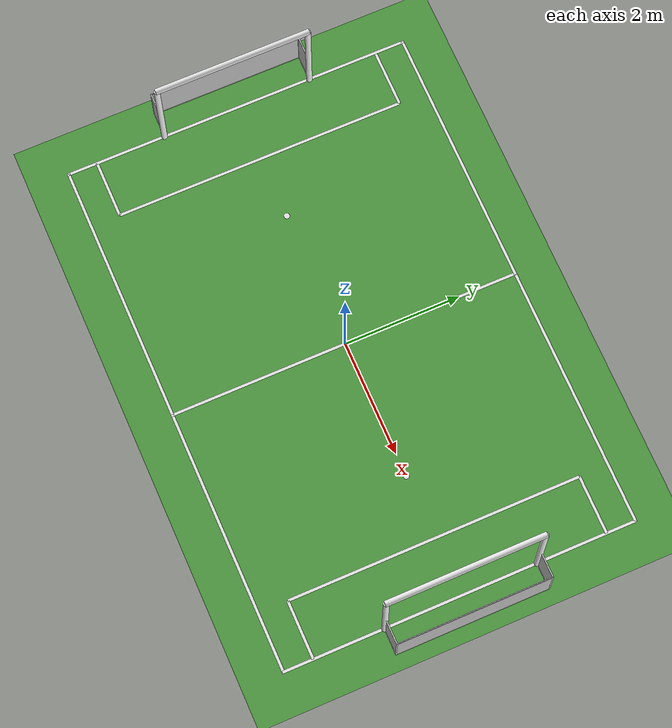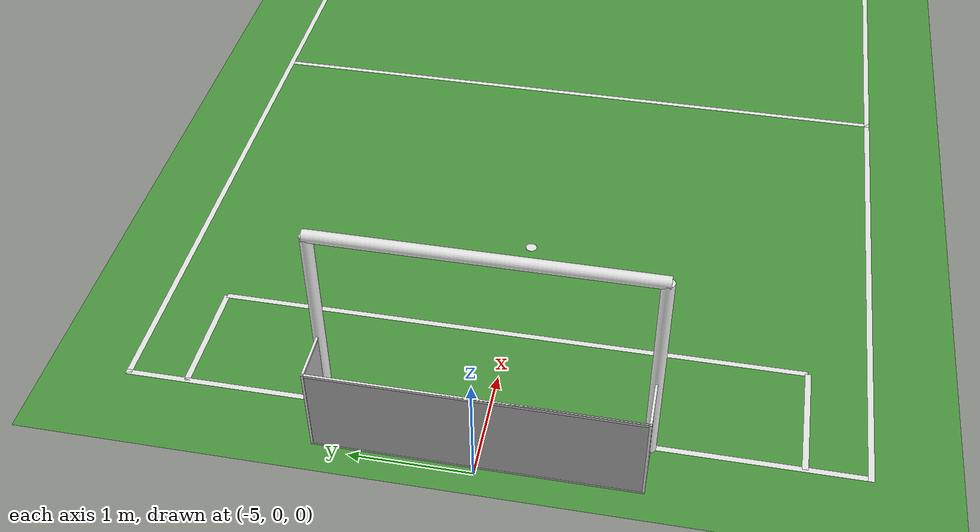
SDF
<sdf version="1.6">
 <world name="default">
  <physics name="default_physics" default="true" type="bullet">
   <max_step_size>0.001</max_step_size>
   <real_time_factor>1</real_time_factor>
   <real_time_update_rate>1000</real_time_update_rate>
  </physics>
  <light name="light" type="directional">
   <pose>0 0 10 0 -0 0</pose>
   <diffuse>0.8 0.8 0.8 1</diffuse>
   <specular>0.2 0.2 0.2 1</specular>
   <attenuation>
    <range>1000</range>
    <constant>0.9</constant>
    <linear>0.01</linear>
    <quadratic>0.001</quadratic>
   </attenuation>
   <direction>-0.5 0.1 -0.9</direction>
  </light>
  <scene>
   <ambient>0.4 0.4 0.4 1</ambient>
   <background>0.1 0.1 0.1 1</background>
   <shadows>1</shadows>
   <sky><clouds><speed>12</speed></clouds></sky>
  </scene>
  <include><uri>model://RoboCup Field</uri></include>
  <include><name>Goal 1</name><uri>model://RoboCup 2014 SPL Goal</uri><pose>4.5 0 0 0 0 0</pose></include>
  <include><name>Goal 2</name><uri>model://RoboCup 2014 SPL Goal</uri><pose>-4.5 0 0 0 0 3.14</pose></include>
 </world>
</sdf>

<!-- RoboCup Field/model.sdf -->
<sdf version='1.6'>
    <model name='RoboCup Field'>
        <static>false</static>
        <link name='field'>
            <pose frame=''>0 0 0.01 0 -0 0</pose>
            <collision name='collision'>
                <geometry>
                    <plane>
                        <normal>0 0 1</normal>
                        <size>10.4 7.4</size>
                    </plane>
                </geometry>
                <surface>
                    <friction>
                        <ode>
                            <mu>100</mu>
                            <mu2>50</mu2>
                        </ode>
                        <torsional>
                            <ode/>
                        </torsional>
                    </friction>
                    <contact>
                        <ode/>
                    </contact>
                    <bounce/>
                </surface>
                <max_contacts>10</max_contacts>
            </collision>
            <inertial>
                <mass>0.01</mass>
                <inertia>
                    <ixx>0.0000001</ixx>
                    <ixy>0.0000001</ixy>
                    <ixz>0.0000001</ixz>
                    <iyy>0.0000001</iyy>
                    <iyz>0.0000001</iyz>
                    <izz>0.0000001</izz>
                </inertia>
            </inertial>
            <visual name='carpet'>
                <cast_shadows>0</cast_shadows>
                <geometry>
                    <plane>
                        <normal>0 0 1</normal>
                        <size>10.4 7.4</size>
                    </plane>
                </geometry>
                <material>
                    <script>
                        <uri>model://RoboCup Field/materials/scripts/</uri>
                        <uri>model://RoboCup Field/materials/textures/</uri>
                        <name>RoboCup/RealGrass</name>
                    </script>
                </material>
            </visual>
            <visual name='sideline_1'>
                <pose frame=''>0 3 0.001 0 -0 0</pose>
                <cast_shadows>0</cast_shadows>
                <geometry>
                    <plane>
                        <normal>0 0 1</normal>
                        <size>9.05 0.05</size>
                    </plane>
                </geometry>
                <material>
                    <script>
                        <uri>file://media/materials/scripts/gazebo.material</uri>
                        <name>Gazebo/White</name>
                    </script>
                </material>
            </visual>
            <visual name='sideline_2'>
                <pose frame=''>0 -3 0.001 0 -0 0</pose>
                <cast_shadows>0</cast_shadows>
                <geometry>
                    <plane>
                        <normal>0 0 1</normal>
                        <size>9.05 0.05</size>
                    </plane>
                </geometry>
                <material>
                    <script>
                        <uri>file://media/materials/scripts/gazebo.material</uri>
                        <name>Gazebo/White</name>
                    </script>
                </material>
            </visual>
            <visual name='endline_1'>
                <pose frame=''>-4.5 0 0.001 0 -0 0</pose>
                <cast_shadows>0</cast_shadows>
                <geometry>
                    <plane>
                        <normal>0 0 1</normal>
                        <size>0.05 6.05</size>
                    </plane>
                </geometry>
                <material>
                    <script>
                        <uri>file://media/materials/scripts/gazebo.material</uri>
                        <name>Gazebo/White</name>
                    </script>
                </material>
            </visual>
            <visual name='endline_2'>
                <pose frame=''>4.5 0 0.001 0 -0 0</pose>
                <cast_shadows>0</cast_shadows>
                <geometry>
                    <plane>
                        <normal>0 0 1</normal>
                        <size>0.05 6.05</size>
                    </plane>
                </geometry>
                <material>
                    <script>
                        <uri>file://media/materials/scripts/gazebo.material</uri>
                        <name>Gazebo/White</name>
                    </script>
                </material>
            </visual>
            <visual name='halfway_line'>
                <pose frame=''>0 0 0.001 0 -0 0</pose>
                <cast_shadows>0</cast_shadows>
                <geometry>
                    <plane>
                        <normal>0 0 1</normal>
                        <size>0.05 6.05</size>
                    </plane>
                </geometry>
                <material>
                    <script>
                        <uri>file://media/materials/scripts/gazebo.material</uri>
                        <name>Gazebo/White</name>
                    </script>
                </material>
            </visual>
            <visual name='area_1_line_a'>
                <pose frame=''>-3.5 0 0.001 0 -0 0</pose>
                <cast_shadows>0</cast_shadows>
                <geometry>
                    <plane>
                        <normal>0 0 1</normal>
                        <size>0.05 5</size>
                    </plane>
                </geometry>
                <material>
                    <script>
                        <uri>file://media/materials/scripts/gazebo.material</uri>
                        <name>Gazebo/White</name>
                    </script>
                </material>
            </visual>
            <visual name='area_2_line_a'>
                <pose frame=''>-4.0 2.5 0.001 0 -0 0</pose>
                <cast_shadows>0</cast_shadows>
                <geometry>
                    <plane>
                        <normal>0 0 1</normal>
                        <size>1 0.05</size>
                    </plane>
                </geometry>
                <material>
                    <script>
                        <uri>file://media/materials/scripts/gazebo.material</uri>
                        <name>Gazebo/White</name>
                    </script>
                </material>
            </visual>
            <visual name='area_3_line_a'>
                <pose frame=''>-4.0 -2.5 0.001 0 -0 0</pose>
                <cast_shadows>0</cast_shadows>
                <geometry>
                    <plane>
                        <normal>0 0 1</normal>
                        <size>1 0.05</size>
                    </plane>
                </geometry>
                <material>
                    <script>
                        <uri>file://media/materials/scripts/gazebo.material</uri>
                        <name>Gazebo/White</name>
                    </script>
                </material>
            </visual>
            <visual name='area_1_line_b'>
                <pose frame=''>3.5 0 0.001 0 -0 0</pose>
                <cast_shadows>0</cast_shadows>
                <geometry>
                    <plane>
                        <normal>0 0 1</normal>
                        <size>0.05 5</size>
                    </plane>
                </geometry>
                <material>
                    <script>
                        <uri>file://media/materials/scripts/gazebo.material</uri>
                        <name>Gazebo/White</name>
                    </script>
                </material>
            </visual>
            <visual name='area_2_line_b'>
                <pose frame=''>4.0 2.5 0.001 0 -0 0</pose>
                <cast_shadows>0</cast_shadows>
                <geometry>
                    <plane>
                        <normal>0 0 1</normal>
                        <size>1 0.05</size>
                    </plane>
                </geometry>
                <material>
                    <script>
                        <uri>file://media/materials/scripts/gazebo.material</uri>
                        <name>Gazebo/White</name>
                    </script>
                </material>
            </visual>
            <visual name='area_3_line_b'>
                <pose frame=''>4.0 -2.5 0.001 0 -0 0</pose>
                <cast_shadows>0</cast_shadows>
                <geometry>
                    <plane>
                        <normal>0 0 1</normal>
                        <size>1 0.05</size>
                    </plane>
                </geometry>
                <material>
                    <script>
                        <uri>file://media/materials/scripts/gazebo.material</uri>
                        <name>Gazebo/White</name>
                    </script>
                </material>
            </visual>
            <visual name='penalty_a'>
                <pose frame=''>-2.4 0 0.001 0 -0 0</pose>
                <cast_shadows>0</cast_shadows>
                <geometry>
                    <cylinder>
                        <radius>0.05</radius>
                        <length>0.0005</length>
                    </cylinder>
                </geometry>
                <material>
                    <script>
                        <uri>file://media/materials/scripts/gazebo.material</uri>
                        <name>Gazebo/White</name>
                    </script>
                </material>
            </visual>
            <visual name='penalty_b'>
                <pose frame=''>2.4 0 0.001 0 -0 0</pose>
                <cast_shadows>0</cast_shadows>
                <geometry>
                    <cylinder>
                        <radius>0.05</radius>
                        <length>0.0005</length>
                    </cylinder>
                </geometry>
                <material>
                    <script>
                        <uri>file://media/materials/scripts/gazebo.material</uri>
                        <name>Gazebo/White</name>
                    </script>
                </material>
            </visual>
            <self_collide>0</self_collide>
            <kinematic>1</kinematic>
        </link>
        <pose frame=''>0.008111 0.030698 0 0 -0 0</pose>
    </model>
</sdf>

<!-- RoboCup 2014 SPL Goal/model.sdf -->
<sdf version='1.6'>
    <model name='RoboCup 2014 SPL Goal'>
        <static>false</static>
        <link name='left_post'>
            <pose frame=''>0 1.3 0.9 0 -0 0</pose>
            <collision name='collision'>
                <geometry>
                    <cylinder>
                        <radius>0.05</radius>
                        <length>1.8</length>
                    </cylinder>
                </geometry>
                <max_contacts>10</max_contacts>
                <surface>
                    <contact>
                        <ode/>
                    </contact>
                    <bounce/>
                    <friction>
                        <torsional>
                            <ode/>
                        </torsional>
                        <ode/>
                    </friction>
                </surface>
            </collision>
            <inertial>
                <mass>0.01</mass>
                <inertia>
                    <ixx>0.0000001</ixx>
                    <ixy>0.0000001</ixy>
                    <ixz>0.0000001</ixz>
                    <iyy>0.0000001</iyy>
                    <iyz>0.0000001</iyz>
                    <izz>0.0000001</izz>
                </inertia>
            </inertial>
            <visual name='visual'>
                <geometry>
                    <cylinder>
                        <radius>0.05</radius>
                        <length>1.8</length>
                    </cylinder>
                </geometry>
                <material>
                    <script>
                        <uri>file://media/materials/scripts/gazebo.material</uri>
                        <name>Gazebo/White</name>
                    </script>
                </material>
            </visual>
            <self_collide>0</self_collide>
            <kinematic>1</kinematic>
        </link>
        <link name='right_post'>
            <pose frame=''>0 -1.3 0.9 0 -0 0</pose>
            <inertial>
                <mass>0.01</mass>
                <inertia>
                    <ixx>0.0000001</ixx>
                    <ixy>0.0000001</ixy>
                    <ixz>0.0000001</ixz>
                    <iyy>0.0000001</iyy>
                    <iyz>0.0000001</iyz>
                    <izz>0.0000001</izz>
                </inertia>
            </inertial>
            <collision name='collision'>
                <geometry>
                    <cylinder>
                        <radius>0.05</radius>
                        <length>1.8</length>
                    </cylinder>
                </geometry>
                <max_contacts>10</max_contacts>
                <surface>
                    <contact>
                        <ode/>
                    </contact>
                    <bounce/>
                    <friction>
                        <torsional>
                            <ode/>
                        </torsional>
                        <ode/>
                    </friction>
                </surface>
            </collision>
            <visual name='visual'>
                <geometry>
                    <cylinder>
                        <radius>0.05</radius>
                        <length>1.8</length>
                    </cylinder>
                </geometry>
                <material>
                    <script>
                        <uri>file://media/materials/scripts/gazebo.material</uri>
                        <name>Gazebo/White</name>
                    </script>
                </material>
            </visual>
            <self_collide>0</self_collide>
            <kinematic>1</kinematic>
        </link>
        <link name='left_support_horiz_lower'>
            <pose frame=''>0.24 1.3 0.01 0 -0 0</pose>
            <inertial>
                <mass>0.01</mass>
                <inertia>
                    <ixx>0.0000001</ixx>
                    <ixy>0.0000001</ixy>
                    <ixz>0.0000001</ixz>
                    <iyy>0.0000001</iyy>
                    <iyz>0.0000001</iyz>
                    <izz>0.0000001</izz>
                </inertia>
            </inertial>
            <collision name='collision'>
                <geometry>
                    <box>
                        <size>0.38 0.02 0.02</size>
                    </box>
                </geometry>
                <max_contacts>10</max_contacts>
                <surface>
                    <contact>
                        <ode/>
                    </contact>
                    <bounce/>
                    <friction>
                        <torsional>
                            <ode/>
                        </torsional>
                        <ode/>
                    </friction>
                </surface>
            </collision>
            <visual name='visual'>
                <geometry>
                    <box>
                        <size>0.38 0.02 0.02</size>
                    </box>
                </geometry>
                <material>
                    <script>
                        <uri>file://media/materials/scripts/gazebo.material</uri>
                        <name>Gazebo/White</name>
                    </script>
                </material>
            </visual>
            <self_collide>0</self_collide>
            <kinematic>1</kinematic>
        </link>
        <link name='left_support_horiz_upper'>
            <pose frame=''>0.24 1.3 0.79 0 -0 0</pose>
            <inertial>
                <mass>0.01</mass>
                <inertia>
                    <ixx>0.0000001</ixx>
                    <ixy>0.0000001</ixy>
                    <ixz>0.0000001</ixz>
                    <iyy>0.0000001</iyy>
                    <iyz>0.0000001</iyz>
                    <izz>0.0000001</izz>
                </inertia>
            </inertial>
            <collision name='collision'>
                <geometry>
                    <box>
                        <size>0.38 0.02 0.02</size>
                    </box>
                </geometry>
                <max_contacts>10</max_contacts>
                <surface>
                    <contact>
                        <ode/>
                    </contact>
                    <bounce/>
                    <friction>
                        <torsional>
                            <ode/>
                        </torsional>
                        <ode/>
                    </friction>
                </surface>
            </collision>
            <visual name='visual'>
                <geometry>
                    <box>
                        <size>0.38 0.02 0.02</size>
                    </box>
                </geometry>
                <material>
                    <script>
                        <uri>file://media/materials/scripts/gazebo.material</uri>
                        <name>Gazebo/White</name>
                    </script>
                </material>
            </visual>
            <self_collide>0</self_collide>
            <kinematic>1</kinematic>
        </link>
        <link name='left_support_vertical'>
            <pose frame=''>0.44 1.3 0.4 3.14159 1.57079 3.14159</pose>
            <inertial>
                <mass>0.01</mass>
                <inertia>
                    <ixx>0.0000001</ixx>
                    <ixy>0.0000001</ixy>
                    <ixz>0.0000001</ixz>
                    <iyy>0.0000001</iyy>
                    <iyz>0.0000001</iyz>
                    <izz>0.0000001</izz>
                </inertia>
            </inertial>
            <collision name='collision'>
                <geometry>
                    <box>
                        <size>0.8 0.02 0.02</size>
                    </box>
                </geometry>
                <max_contacts>10</max_contacts>
                <surface>
                    <contact>
                        <ode/>
                    </contact>
                    <bounce/>
                    <friction>
                        <torsional>
                            <ode/>
                        </torsional>
                        <ode/>
                    </friction>
                </surface>
            </collision>
            <visual name='visual'>
                <geometry>
                    <box>
                        <size>0.8 0.02 0.02</size>
                    </box>
                </geometry>
                <material>
                    <script>
                        <uri>file://media/materials/scripts/gazebo.material</uri>
                        <name>Gazebo/White</name>
                    </script>
                </material>
            </visual>
            <self_collide>0</self_collide>
            <kinematic>1</kinematic>
        </link>
        <link name='right_support_horiz_lower'>
            <pose frame=''>0.24 -1.3 0.01 0 -0 0</pose>
            <inertial>
                <mass>0.01</mass>
                <inertia>
                    <ixx>0.0000001</ixx>
                    <ixy>0.0000001</ixy>
                    <ixz>0.0000001</ixz>
                    <iyy>0.0000001</iyy>
                    <iyz>0.0000001</iyz>
                    <izz>0.0000001</izz>
                </inertia>
            </inertial>
            <collision name='collision'>
                <geometry>
                    <box>
                        <size>0.38 0.02 0.02</size>
                    </box>
                </geometry>
                <max_contacts>10</max_contacts>
                <surface>
                    <contact>
                        <ode/>
                    </contact>
                    <bounce/>
                    <friction>
                        <torsional>
                            <ode/>
                        </torsional>
                        <ode/>
                    </friction>
                </surface>
            </collision>
            <visual name='visual'>
                <geometry>
                    <box>
                        <size>0.38 0.02 0.02</size>
                    </box>
                </geometry>
                <material>
                    <script>
                        <uri>file://media/materials/scripts/gazebo.material</uri>
                        <name>Gazebo/White</name>
                    </script>
                </material>
            </visual>
            <self_collide>0</self_collide>
            <kinematic>1</kinematic>
        </link>
        <link name='right_support_horiz_upper'>
            <pose frame=''>0.24 -1.3 0.79 0 -0 0</pose>
            <inertial>
                <mass>0.01</mass>
                <inertia>
                    <ixx>0.0000001</ixx>
                    <ixy>0.0000001</ixy>
                    <ixz>0.0000001</ixz>
                    <iyy>0.0000001</iyy>
                    <iyz>0.0000001</iyz>
                    <izz>0.0000001</izz>
                </inertia>
            </inertial>
            <collision name='collision'>
                <geometry>
                    <box>
                        <size>0.38 0.02 0.02</size>
                    </box>
                </geometry>
                <max_contacts>10</max_contacts>
                <surface>
                    <contact>
                        <ode/>
                    </contact>
                    <bounce/>
                    <friction>
                        <torsional>
                            <ode/>
                        </torsional>
                        <ode/>
                    </friction>
                </surface>
            </collision>
            <visual name='visual'>
                <geometry>
                    <box>
                        <size>0.38 0.02 0.02</size>
                    </box>
                </geometry>
                <material>
                    <script>
                        <uri>file://media/materials/scripts/gazebo.material</uri>
                        <name>Gazebo/White</name>
                    </script>
                </material>
            </visual>
            <self_collide>0</self_collide>
            <kinematic>1</kinematic>
        </link>
        <link name='right_support_vertical'>
            <pose frame=''>0.44 -1.3 0.4 3.14159 1.57079 3.14159</pose>
            <inertial>
                <mass>0.01</mass>
                <inertia>
                    <ixx>0.0000001</ixx>
                    <ixy>0.0000001</ixy>
                    <ixz>0.0000001</ixz>
                    <iyy>0.0000001</iyy>
                    <iyz>0.0000001</iyz>
                    <izz>0.0000001</izz>
                </inertia>
            </inertial>
            <collision name='collision'>
                <geometry>
                    <box>
                        <size>0.8 0.02 0.02</size>
                    </box>
                </geometry>
                <max_contacts>10</max_contacts>
                <surface>
                    <contact>
                        <ode/>
                    </contact>
                    <bounce/>
                    <friction>
                        <torsional>
                            <ode/>
                        </torsional>
                        <ode/>
                    </friction>
                </surface>
            </collision>
            <visual name='visual'>
                <geometry>
                    <box>
                        <size>0.8 0.02 0.02</size>
                    </box>
                </geometry>
                <material>
                    <script>
                        <uri>file://media/materials/scripts/gazebo.material</uri>
                        <name>Gazebo/White</name>
                    </script>
                </material>
            </visual>
            <self_collide>0</self_collide>
            <kinematic>1</kinematic>
        </link>
        <link name='center_support_horiz_lower'>
            <pose frame=''>0.44 0 0.01 3.14159 1.57079 3.14159</pose>
            <inertial>
                <mass>0.01</mass>
                <inertia>
                    <ixx>0.0000001</ixx>
                    <ixy>0.0000001</ixy>
                    <ixz>0.0000001</ixz>
                    <iyy>0.0000001</iyy>
                    <iyz>0.0000001</iyz>
                    <izz>0.0000001</izz>
                </inertia>
            </inertial>
            <collision name='collision'>
                <geometry>
                    <box>
                        <size>0.02 2.6 0.02</size>
                    </box>
                </geometry>
                <max_contacts>10</max_contacts>
                <surface>
                    <contact>
                        <ode/>
                    </contact>
                    <bounce/>
                    <friction>
                        <torsional>
                            <ode/>
                        </torsional>
                        <ode/>
                    </friction>
                </surface>
            </collision>
            <visual name='visual'>
                <geometry>
                    <box>
                        <size>0.02 2.6 0.02</size>
                    </box>
                </geometry>
                <material>
                    <script>
                        <uri>file://media/materials/scripts/gazebo.material</uri>
                        <name>Gazebo/White</name>
                    </script>
                </material>
            </visual>
            <self_collide>0</self_collide>
            <kinematic>1</kinematic>
        </link>
        <link name='center_support_horiz_upper'>
            <pose frame=''>0.44 0 0.79 3.14159 1.57079 3.14159</pose>
            <inertial>
                <mass>0.01</mass>
                <inertia>
                    <ixx>0.0000001</ixx>
                    <ixy>0.0000001</ixy>
                    <ixz>0.0000001</ixz>
                    <iyy>0.0000001</iyy>
                    <iyz>0.0000001</iyz>
                    <izz>0.0000001</izz>
                </inertia>
            </inertial>
            <collision name='collision'>
                <geometry>
                    <box>
                        <size>0.02 2.6 0.02</size>
                    </box>
                </geometry>
                <max_contacts>10</max_contacts>
                <surface>
                    <contact>
                        <ode/>
                    </contact>
                    <bounce/>
                    <friction>
                        <torsional>
                            <ode/>
                        </torsional>
                        <ode/>
                    </friction>
                </surface>
            </collision>
            <visual name='visual'>
                <geometry>
                    <box>
                        <size>0.02 2.6 0.02</size>
                    </box>
                </geometry>
                <material>
                    <script>
                        <uri>file://media/materials/scripts/gazebo.material</uri>
                        <name>Gazebo/White</name>
                    </script>
                </material>
            </visual>
            <self_collide>0</self_collide>
            <kinematic>1</kinematic>
        </link>
        <link name='crossbar'>
            <pose frame=''>0 0 1.8 1.57 1.57 0</pose>
            <inertial>
                <mass>0.01</mass>
                <inertia>
                    <ixx>0.0000001</ixx>
                    <ixy>0.0000001</ixy>
                    <ixz>0.0000001</ixz>
                    <iyy>0.0000001</iyy>
                    <iyz>0.0000001</iyz>
                    <izz>0.0000001</izz>
                </inertia>
            </inertial>
            <collision name='collision'>
                <geometry>
                    <cylinder>
                        <radius>0.05</radius>
                        <length>2.65</length>
                    </cylinder>
                </geometry>
                <max_contacts>10</max_contacts>
                <surface>
                    <contact>
                        <ode/>
                    </contact>
                    <bounce/>
                    <friction>
                        <torsional>
                            <ode/>
                        </torsional>
                        <ode/>
                    </friction>
                </surface>
            </collision>
            <visual name='visual'>
                <geometry>
                    <cylinder>
                        <radius>0.05</radius>
                        <length>2.65</length>
                    </cylinder>
                </geometry>
                <material>
                    <script>
                        <uri>file://media/materials/scripts/gazebo.material</uri>
                        <name>Gazebo/White</name>
                    </script>
                </material>
            </visual>
            <self_collide>0</self_collide>
            <kinematic>1</kinematic>
        </link>
        <link name='center_net'>
            <pose frame=''>0.44 0 0.4 0 -0 0</pose>
            <inertial>
                <mass>0.01</mass>
                <inertia>
                    <ixx>0.0000001</ixx>
                    <ixy>0.0000001</ixy>
                    <ixz>0.0000001</ixz>
                    <iyy>0.0000001</iyy>
                    <iyz>0.0000001</iyz>
                    <izz>0.0000001</izz>
                </inertia>
            </inertial>
            <collision name='collision'>
                <geometry>
                    <box>
                        <size>0.01 2.6 0.8</size>
                    </box>
                </geometry>
                <max_contacts>10</max_contacts>
                <surface>
                    <contact>
                        <ode/>
                    </contact>
                    <bounce/>
                    <friction>
                        <torsional>
                            <ode/>
                        </torsional>
                        <ode/>
                    </friction>
                </surface>
            </collision>
            <visual name='visual'>
                <geometry>
                    <box>
                        <size>0.01 2.6 0.8</size>
                    </box>
                </geometry>
                <material>
                    <script>
                        <uri>model://robocup09_spl_field/materials/scripts/</uri>
                        <uri>model://robocup09_spl_field/materials/textures/</uri>
                        <name>RoboCup/Net</name>
                    </script>
                </material>
            </visual>
            <self_collide>0</self_collide>
            <kinematic>1</kinematic>
        </link>
        <link name='left_net'>
            <pose frame=''>0.24 1.3 0.4 0 -0 0</pose>
            <inertial>
                <mass>0.01</mass>
                <inertia>
                    <ixx>0.0000001</ixx>
                    <ixy>0.0000001</ixy>
                    <ixz>0.0000001</ixz>
                    <iyy>0.0000001</iyy>
                    <iyz>0.0000001</iyz>
                    <izz>0.0000001</izz>
                </inertia>
            </inertial>
            <collision name='collision'>
                <geometry>
                    <box>
                        <size>0.38 0.01 0.76</size>
                    </box>
                </geometry>
                <max_contacts>10</max_contacts>
                <surface>
                    <contact>
                        <ode/>
                    </contact>
                    <bounce/>
                    <friction>
                        <torsional>
                            <ode/>
                        </torsional>
                        <ode/>
                    </friction>
                </surface>
            </collision>
            <visual name='visual'>
                <geometry>
                    <box>
                        <size>0.38 0.01 0.76</size>
                    </box>
                </geometry>
                <material>
                    <script>
                        <uri>model://robocup09_spl_field/materials/scripts/</uri>
                        <uri>model://robocup09_spl_field/materials/textures/</uri>
                        <name>RoboCup/Net</name>
                    </script>
                </material>
            </visual>
            <self_collide>0</self_collide>
            <kinematic>1</kinematic>
        </link>
        <link name='right_net'>
            <pose frame=''>0.24 -1.3 0.4 0 -0 0</pose>
            <inertial>
                <mass>0.01</mass>
                <inertia>
                    <ixx>0.0000001</ixx>
                    <ixy>0.0000001</ixy>
                    <ixz>0.0000001</ixz>
                    <iyy>0.0000001</iyy>
                    <iyz>0.0000001</iyz>
                    <izz>0.0000001</izz>
                </inertia>
            </inertial>
            <collision name='collision'>
                <geometry>
                    <box>
                        <size>0.38 0.01 0.76</size>
                    </box>
                </geometry>
                <max_contacts>10</max_contacts>
                <surface>
                    <contact>
                        <ode/>
                    </contact>
                    <bounce/>
                    <friction>
                        <torsional>
                            <ode/>
                        </torsional>
                        <ode/>
                    </friction>
                </surface>
            </collision>
            <visual name='visual'>
                <geometry>
                    <box>
                        <size>0.38 0.01 0.76</size>
                    </box>
                </geometry>
                <material>
                    <script>
                        <uri>model://robocup09_spl_field/materials/scripts/</uri>
                        <uri>model://robocup09_spl_field/materials/textures/</uri>
                        <name>RoboCup/Net</name>
                    </script>
                </material>
            </visual>
            <self_collide>0</self_collide>
            <kinematic>1</kinematic>
        </link>
        <pose frame=''>4.38819 -0.032635 0 0 -0 0</pose>
    </model>
</sdf>
